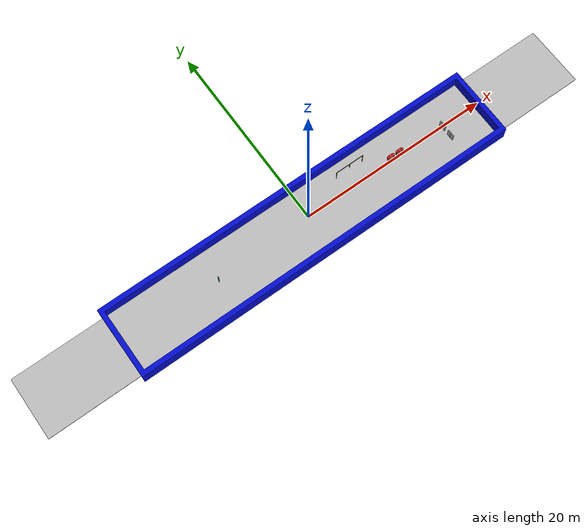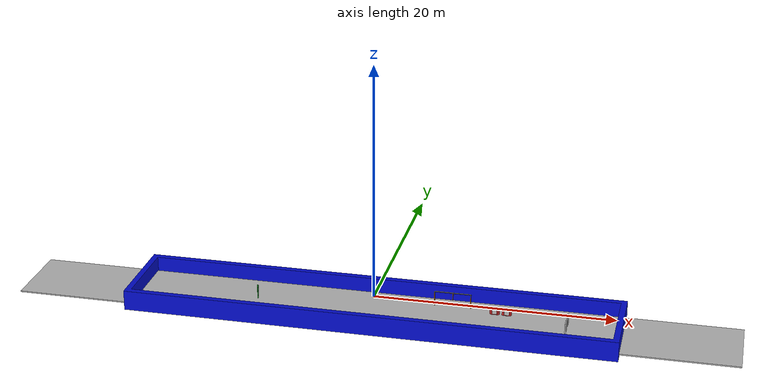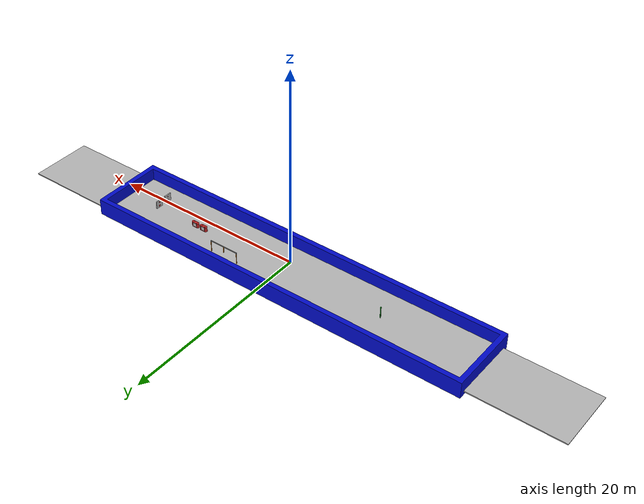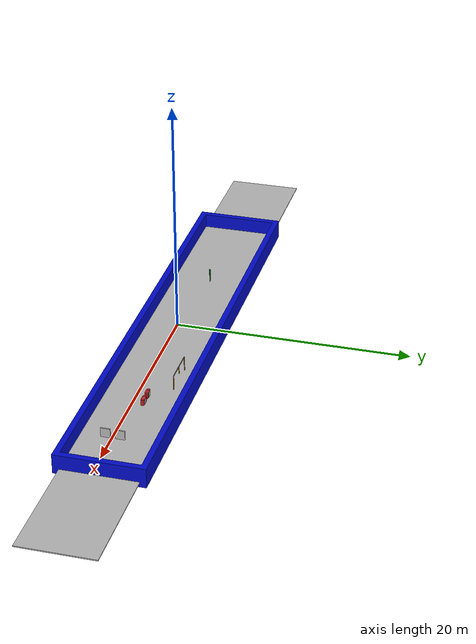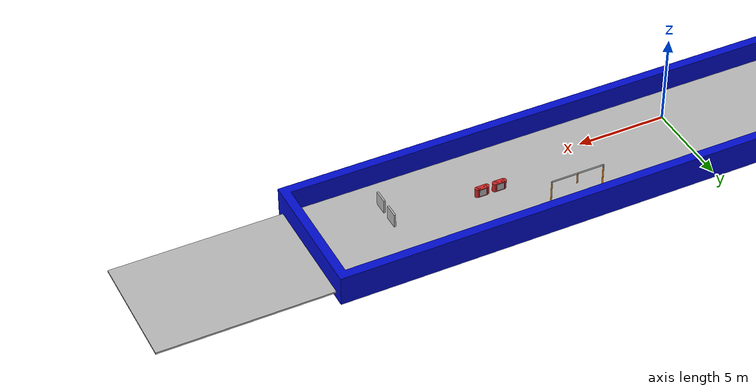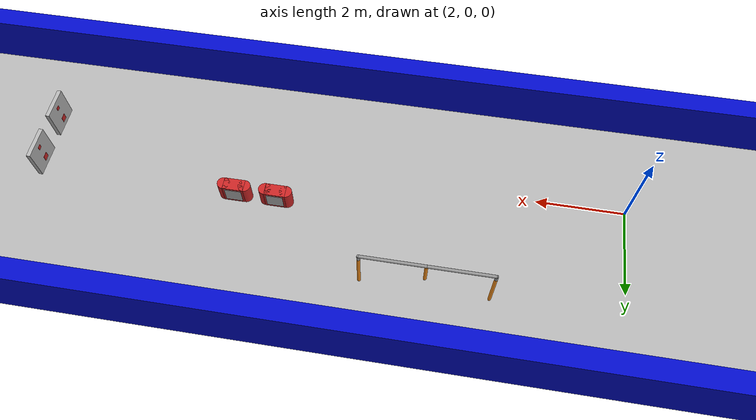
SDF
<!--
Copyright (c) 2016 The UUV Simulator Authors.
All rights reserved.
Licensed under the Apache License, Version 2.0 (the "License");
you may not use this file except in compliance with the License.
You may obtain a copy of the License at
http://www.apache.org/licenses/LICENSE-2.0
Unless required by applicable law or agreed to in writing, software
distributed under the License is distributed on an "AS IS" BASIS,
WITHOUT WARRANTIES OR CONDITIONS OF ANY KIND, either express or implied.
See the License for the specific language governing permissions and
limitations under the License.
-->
<sdf version="1.5">
 <world name="empty_underwater">
  <physics name="default_physics" default="true" type="ode">
   <max_step_size>0.002</max_step_size>
   <real_time_factor>1</real_time_factor>
   <real_time_update_rate>500</real_time_update_rate>
   <ode><solver><type>quick</type><iters>50</iters><sor>0.5</sor></solver></ode>
  </physics>
  <scene>
   <ambient>0.01 0.01 0.01 1.0</ambient>
   <sky><clouds><speed>12</speed></clouds></sky>
   <shadows>1</shadows>
   <fog>
    <color>0.0039 0.26 0.415 1.0</color>
    <type>linear</type>
    <density>0.4</density>
    <start>10</start>
    <end>40</end>
   </fog>
  </scene>
  <spherical_coordinates>
   <latitude_deg>56.71897669633431</latitude_deg>
   <longitude_deg>3.515625</longitude_deg>
  </spherical_coordinates>
  <light type="directional" name="sun1">
   <pose>10 0 10 0 0 0</pose>
   <diffuse>0.25 0.25 0.45 1</diffuse>
   <specular>0.2 0.2 0.2 1</specular>
   <attenuation>
    <range>1000</range>
    <constant>0.9</constant>
    <linear>0.01</linear>
    <quadratic>0.001</quadratic>
   </attenuation>
   <direction>-0.5 0.1 -0.9</direction>
  </light>
  <light type="directional" name="sun2">
   <pose>-10 0 10 0 0 0</pose>
   <diffuse>0.25 0.35 0.45 1</diffuse>
   <specular>0.2 0.2 0.2 1</specular>
   <attenuation>
    <range>1000</range>
    <constant>0.9</constant>
    <linear>0.01</linear>
    <quadratic>0.001</quadratic>
   </attenuation>
   <direction>0.5 0.1 0.9</direction>
  </light>
  <light type="directional" name="sun3">
   <pose>-25 0 5 0 0 0</pose>
   <diffuse>0.25 0.25 0.45 1</diffuse>
   <specular>0.2 0.2 0.2 1</specular>
   <attenuation>
    <range>20</range>
    <constant>0.9</constant>
    <linear>0.01</linear>
    <quadratic>0.001</quadratic>
   </attenuation>
   <direction>0.5 0.1 0.9</direction>
  </light>
  <include><uri>model://pools/cybernetics_pool</uri></include>
  <include><name>gate_side_a</name><pose>7.0 2.0 0.0 0 0 1.57</pose><uri>model://2018/gate</uri></include>
  <include>
   <name>torpedo_targets</name>
   <pose>16.0 -1.8 -0.5 0 0 1.57</pose>
   <uri>model://2018/torpedo_targets</uri>
  </include>
  <include>
   <name>buoy_tommy_gun</name>
   <pose>11.0 0.5 -0.5 0 0 0</pose>
   <uri>model://2018/buoy_tommy_gun</uri>
  </include>
  <include><name>buoy_badge</name><pose>10.0 0.5 -0.5 0 0 0</pose><uri>model://2018/buoy_badge</uri></include>
  <include><name>buoys</name><pose>-10.0 0.0 0.0 0 0 0</pose><uri>model://buoys</uri></include>
  <plugin name="underwater_current_plugin" filename="libuuv_underwater_current_ros_plugin.so">
   <namespace>hydrodynamics</namespace>
   <constant_current>
    <topic>current_velocity</topic>
    <velocity><mean>0</mean><min>0</min><max>5</max><mu>0.0</mu><noiseAmp>0.0</noiseAmp></velocity>
    <horizontal_angle>
     <mean>0</mean>
     <min>-3.141592653589793238</min>
     <max>3.141592653589793238</max>
     <mu>0.0</mu>
     <noiseAmp>0.0</noiseAmp>
    </horizontal_angle>
    <vertical_angle>
     <mean>0</mean>
     <min>-3.141592653589793238</min>
     <max>3.141592653589793238</max>
     <mu>0.0</mu>
     <noiseAmp>0.0</noiseAmp>
    </vertical_angle>
   </constant_current>
  </plugin>
  <plugin name="sc_interface" filename="libuuv_sc_ros_interface_plugin.so"/>
 </world>
</sdf>

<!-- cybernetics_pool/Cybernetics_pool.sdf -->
<sdf version='1.5'>

  <model name='transdec_pool'>
    <pose>0 0 0 0 0 0</pose>
    <self_collide> 0 </self_collide>
    <static> 1</static>

    <link name='pool'>
      <pose>0 0 0 0 0 0</pose>
      <visual name='pool_visual'>
        <geometry>
            <mesh><uri>file://cybernetics_pool/cybernetics_pool.dae</uri></mesh>
        </geometry>
        <material>
          <script>
            <uri>file://media/materials/scripts/sand.material</uri>
            <name>UUVSimulator/SandAndStones</name>
          </script>
          <emissive>
            0.2 0.2 0.2 1.0
          </emissive>
        </material>
      </visual>
      <collision name='pool_collision'>
        <geometry>
            <mesh><uri>file://cybernetics_pool/cybernetics_pool.dae</uri></mesh>
        </geometry>
      </collision>

    <visual name="ground">
        <cast_shadows>false</cast_shadows>
        <pose>0 0 -1.3 0 0 0</pose>
        <geometry>
          <box>
            <size>60 6.45 .1</size>
          </box>
        </geometry>
        <material>
          <script>
            <uri>file://media/materials/scripts/sand.material</uri>
            <name>UUVSimulator/SandAndStones</name>
          </script>
        </material>
      </visual>

    </link>

  </model>
</sdf>

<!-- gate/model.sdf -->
<sdf version='1.6'>
  <model name='gate'>
    <link name='component_rt'>
      <inertial>
        <mass>10</mass>
        <inertia>
          <ixx>0.145833</ixx>
          <ixy>0</ixy>
          <ixz>0</ixz>
          <iyy>0.145833</iyy>
          <iyz>0</iyz>
          <izz>0.125</izz>
        </inertia>
        <pose>0 0 0 0 -0 0</pose>
      </inertial>
      <pose>0 1.52 -0.000146 1.5707 -0 0</pose>
      <self_collide>0</self_collide>
      <enable_wind>0</enable_wind>
      <kinematic>0</kinematic>
      <gravity>0</gravity>
      <visual name='visual'>
        <pose>0 0 0 0 -0 0</pose>
        <geometry>
          <cylinder>
            <radius>0.0381</radius>
            <length>1.52</length>
          </cylinder>
        </geometry>
        <material>
          <lighting>1</lighting>
          <script>
            <uri>file://media/materials/scripts/gazebo.material</uri>
            <name>Gazebo/Grey</name>
          </script>
          <shader type='pixel'/>
          <emissive>0 0 0 1</emissive>
        </material>
        <transparency>0</transparency>
        <cast_shadows>1</cast_shadows>
      </visual>
      <collision name='collision'>
        <laser_retro>0</laser_retro>
        <max_contacts>10</max_contacts>
        <pose>0 0 0 0 -0 0</pose>
        <geometry>
          <cylinder>
            <radius>0.0381</radius>
            <length>1.52</length>
          </cylinder>
        </geometry>
        <surface>
          <friction>
            <ode>
              <mu>1</mu>
              <mu2>1</mu2>
              <fdir1>0 0 0</fdir1>
              <slip1>0</slip1>
              <slip2>0</slip2>
            </ode>
            <torsional>
              <coefficient>1</coefficient>
              <patch_radius>0</patch_radius>
              <surface_radius>0</surface_radius>
              <use_patch_radius>1</use_patch_radius>
              <ode>
                <slip>0</slip>
              </ode>
            </torsional>
          </friction>
          <bounce>
            <restitution_coefficient>0</restitution_coefficient>
            <threshold>1e+06</threshold>
          </bounce>
          <contact>
            <collide_without_contact>0</collide_without_contact>
            <collide_without_contact_bitmask>1</collide_without_contact_bitmask>
            <collide_bitmask>1</collide_bitmask>
            <ode>
              <soft_cfm>0</soft_cfm>
              <soft_erp>0.2</soft_erp>
              <kp>1e+13</kp>
              <kd>1</kd>
              <max_vel>0.01</max_vel>
              <min_depth>0</min_depth>
            </ode>
            <bullet>
              <split_impulse>1</split_impulse>
              <split_impulse_penetration_threshold>-0.01</split_impulse_penetration_threshold>
              <soft_cfm>0</soft_cfm>
              <soft_erp>0.2</soft_erp>
              <kp>1e+13</kp>
              <kd>1</kd>
            </bullet>
          </contact>
        </surface>
      </collision>
    </link>
    <link name='component_lb'>
      <inertial>
        <mass>10</mass>
        <inertia>
          <ixx>0.145833</ixx>
          <ixy>0</ixy>
          <ixz>0</ixz>
          <iyy>0.145833</iyy>
          <iyz>0</iyz>
          <izz>0.125</izz>
        </inertia>
        <pose>0 0 0 0 -0 0</pose>
      </inertial>
      <pose>-0 -0.760073 -0.759927 0 -0 0</pose>
      <self_collide>0</self_collide>
      <enable_wind>0</enable_wind>
      <kinematic>0</kinematic>
      <gravity>0</gravity>
      <visual name='visual'>
        <pose>0 0 0 0 -0 0</pose>
        <geometry>
          <cylinder>
            <radius>0.0381</radius>
            <length>1.52</length>
          </cylinder>
        </geometry>
        <material>
          <lighting>1</lighting>
          <script>
            <uri>file://media/materials/scripts/gazebo.material</uri>
            <name>Gazebo/Grey</name>
          </script>
          <shader type='pixel'/>
          <emissive>0 0 0 1</emissive>
        </material>
        <transparency>0</transparency>
        <cast_shadows>1</cast_shadows>
      </visual>
      <collision name='collision'>
        <laser_retro>0</laser_retro>
        <max_contacts>10</max_contacts>
        <pose>0 0 0 0 -0 0</pose>
        <geometry>
          <cylinder>
            <radius>0.0381</radius>
            <length>1.52</length>
          </cylinder>
        </geometry>
        <surface>
          <friction>
            <ode>
              <mu>1</mu>
              <mu2>1</mu2>
              <fdir1>0 0 0</fdir1>
              <slip1>0</slip1>
              <slip2>0</slip2>
            </ode>
            <torsional>
              <coefficient>1</coefficient>
              <patch_radius>0</patch_radius>
              <surface_radius>0</surface_radius>
              <use_patch_radius>1</use_patch_radius>
              <ode>
                <slip>0</slip>
              </ode>
            </torsional>
          </friction>
          <bounce>
            <restitution_coefficient>0</restitution_coefficient>
            <threshold>1e+06</threshold>
          </bounce>
          <contact>
            <collide_without_contact>0</collide_without_contact>
            <collide_without_contact_bitmask>1</collide_without_contact_bitmask>
            <collide_bitmask>1</collide_bitmask>
            <ode>
              <soft_cfm>0</soft_cfm>
              <soft_erp>0.2</soft_erp>
              <kp>1e+13</kp>
              <kd>1</kd>
              <max_vel>0.01</max_vel>
              <min_depth>0</min_depth>
            </ode>
            <bullet>
              <split_impulse>1</split_impulse>
              <split_impulse_penetration_threshold>-0.01</split_impulse_penetration_threshold>
              <soft_cfm>0</soft_cfm>
              <soft_erp>0.2</soft_erp>
              <kp>1e+13</kp>
              <kd>1</kd>
            </bullet>
          </contact>
        </surface>
      </collision>
    </link>
    <link name='component_lt'>
      <inertial>
        <mass>10</mass>
        <inertia>
          <ixx>0.145833</ixx>
          <ixy>0</ixy>
          <ixz>0</ixz>
          <iyy>0.145833</iyy>
          <iyz>0</iyz>
          <izz>0.125</izz>
        </inertia>
        <pose>0 0 0 0 -0 0</pose>
      </inertial>
      <pose>0 0 0 1.5707 -0 0</pose>
      <self_collide>0</self_collide>
      <enable_wind>0</enable_wind>
      <kinematic>0</kinematic>
      <gravity>0</gravity>
      <visual name='visual'>
        <pose>0 0 0 0 -0 0</pose>
        <geometry>
          <cylinder>
            <radius>0.0381</radius>
            <length>1.52</length>
          </cylinder>
        </geometry>
        <material>
          <lighting>1</lighting>
          <script>
            <uri>file://media/materials/scripts/gazebo.material</uri>
            <name>Gazebo/Grey</name>
          </script>
          <shader type='pixel'/>
          <emissive>0 0 0 1</emissive>
        </material>
        <transparency>0</transparency>
        <cast_shadows>1</cast_shadows>
      </visual>
      <collision name='collision'>
        <laser_retro>0</laser_retro>
        <max_contacts>10</max_contacts>
        <pose>0 0 0 0 -0 0</pose>
        <geometry>
          <cylinder>
            <radius>0.0381</radius>
            <length>1.52</length>
          </cylinder>
        </geometry>
        <surface>
          <friction>
            <ode>
              <mu>1</mu>
              <mu2>1</mu2>
              <fdir1>0 0 0</fdir1>
              <slip1>0</slip1>
              <slip2>0</slip2>
            </ode>
            <torsional>
              <coefficient>1</coefficient>
              <patch_radius>0</patch_radius>
              <surface_radius>0</surface_radius>
              <use_patch_radius>1</use_patch_radius>
              <ode>
                <slip>0</slip>
              </ode>
            </torsional>
          </friction>
          <bounce>
            <restitution_coefficient>0</restitution_coefficient>
            <threshold>1e+06</threshold>
          </bounce>
          <contact>
            <collide_without_contact>0</collide_without_contact>
            <collide_without_contact_bitmask>1</collide_without_contact_bitmask>
            <collide_bitmask>1</collide_bitmask>
            <ode>
              <soft_cfm>0</soft_cfm>
              <soft_erp>0.2</soft_erp>
              <kp>1e+13</kp>
              <kd>1</kd>
              <max_vel>0.01</max_vel>
              <min_depth>0</min_depth>
            </ode>
            <bullet>
              <split_impulse>1</split_impulse>
              <split_impulse_penetration_threshold>-0.01</split_impulse_penetration_threshold>
              <soft_cfm>0</soft_cfm>
              <soft_erp>0.2</soft_erp>
              <kp>1e+13</kp>
              <kd>1</kd>
            </bullet>
          </contact>
        </surface>
      </collision>
    </link>
    <link name='component_rb'>
      <inertial>
        <mass>10</mass>
        <inertia>
          <ixx>0.145833</ixx>
          <ixy>0</ixy>
          <ixz>0</ixz>
          <iyy>0.145833</iyy>
          <iyz>0</iyz>
          <izz>0.125</izz>
        </inertia>
        <pose>0 0 0 0 -0 0</pose>
      </inertial>
      <pose>0 2.27993 -0.76022 0 -0 0</pose>
      <self_collide>0</self_collide>
      <enable_wind>0</enable_wind>
      <kinematic>0</kinematic>
      <gravity>0</gravity>
      <visual name='visual'>
        <pose>0 0 0 0 -0 0</pose>
        <geometry>
          <cylinder>
            <radius>0.0381</radius>
            <length>1.52</length>
          </cylinder>
        </geometry>
        <material>
          <lighting>1</lighting>
          <script>
            <uri>file://media/materials/scripts/gazebo.material</uri>
            <name>Gazebo/Grey</name>
          </script>
          <shader type='pixel'/>
          <emissive>0 0 0 1</emissive>
        </material>
        <transparency>0</transparency>
        <cast_shadows>1</cast_shadows>
      </visual>
      <collision name='collision'>
        <laser_retro>0</laser_retro>
        <max_contacts>10</max_contacts>
        <pose>0 0 0 0 -0 0</pose>
        <geometry>
          <cylinder>
            <radius>0.0381</radius>
            <length>1.52</length>
          </cylinder>
        </geometry>
        <surface>
          <friction>
            <ode>
              <mu>1</mu>
              <mu2>1</mu2>
              <fdir1>0 0 0</fdir1>
              <slip1>0</slip1>
              <slip2>0</slip2>
            </ode>
            <torsional>
              <coefficient>1</coefficient>
              <patch_radius>0</patch_radius>
              <surface_radius>0</surface_radius>
              <use_patch_radius>1</use_patch_radius>
              <ode>
                <slip>0</slip>
              </ode>
            </torsional>
          </friction>
          <bounce>
            <restitution_coefficient>0</restitution_coefficient>
            <threshold>1e+06</threshold>
          </bounce>
          <contact>
            <collide_without_contact>0</collide_without_contact>
            <collide_without_contact_bitmask>1</collide_without_contact_bitmask>
            <collide_bitmask>1</collide_bitmask>
            <ode>
              <soft_cfm>0</soft_cfm>
              <soft_erp>0.2</soft_erp>
              <kp>1e+13</kp>
              <kd>1</kd>
              <max_vel>0.01</max_vel>
              <min_depth>0</min_depth>
            </ode>
            <bullet>
              <split_impulse>1</split_impulse>
              <split_impulse_penetration_threshold>-0.01</split_impulse_penetration_threshold>
              <soft_cfm>0</soft_cfm>
              <soft_erp>0.2</soft_erp>
              <kp>1e+13</kp>
              <kd>1</kd>
            </bullet>
          </contact>
        </surface>
      </collision>
    </link>
    <link name='corner_l'>
      <inertial>
        <mass>1</mass>
        <inertia>
          <ixx>0.1</ixx>
          <ixy>0</ixy>
          <ixz>0</ixz>
          <iyy>0.1</iyy>
          <iyz>0</iyz>
          <izz>0.1</izz>
        </inertia>
        <pose>0 0 0 0 -0 0</pose>
      </inertial>
      <pose>-0 2.28 -0.000219 1.5707 -0 0</pose>
      <gravity>0</gravity>
      <self_collide>0</self_collide>
      <kinematic>0</kinematic>
      <enable_wind>0</enable_wind>
      <visual name='visual'>
        <pose>0 0 0 0 -0 0</pose>
        <geometry>
          <sphere>
            <radius>0.038</radius>
          </sphere>
        </geometry>
        <material>
          <lighting>1</lighting>
          <script>
            <uri>file://media/materials/scripts/gazebo.material</uri>
            <name>Gazebo/Grey</name>
          </script>
          <shader type='pixel'/>
          <emissive>0 0 0 1</emissive>
        </material>
        <transparency>0</transparency>
        <cast_shadows>1</cast_shadows>
      </visual>
      <collision name='collision'>
        <laser_retro>0</laser_retro>
        <max_contacts>10</max_contacts>
        <pose>0 0 0 0 -0 0</pose>
        <geometry>
          <sphere>
            <radius>0.0381</radius>
          </sphere>
        </geometry>
        <surface>
          <friction>
            <ode>
              <mu>1</mu>
              <mu2>1</mu2>
              <fdir1>0 0 0</fdir1>
              <slip1>0</slip1>
              <slip2>0</slip2>
            </ode>
            <torsional>
              <coefficient>1</coefficient>
              <patch_radius>0</patch_radius>
              <surface_radius>0</surface_radius>
              <use_patch_radius>1</use_patch_radius>
              <ode>
                <slip>0</slip>
              </ode>
            </torsional>
          </friction>
          <bounce>
            <restitution_coefficient>0</restitution_coefficient>
            <threshold>1e+06</threshold>
          </bounce>
          <contact>
            <collide_without_contact>0</collide_without_contact>
            <collide_without_contact_bitmask>1</collide_without_contact_bitmask>
            <collide_bitmask>1</collide_bitmask>
            <ode>
              <soft_cfm>0</soft_cfm>
              <soft_erp>0.2</soft_erp>
              <kp>1e+13</kp>
              <kd>1</kd>
              <max_vel>0.01</max_vel>
              <min_depth>0</min_depth>
            </ode>
            <bullet>
              <split_impulse>1</split_impulse>
              <split_impulse_penetration_threshold>-0.01</split_impulse_penetration_threshold>
              <soft_cfm>0</soft_cfm>
              <soft_erp>0.2</soft_erp>
              <kp>1e+13</kp>
              <kd>1</kd>
            </bullet>
          </contact>
        </surface>
      </collision>
    </link>
    <link name='corner_r'>
      <inertial>
        <mass>1</mass>
        <inertia>
          <ixx>0.1</ixx>
          <ixy>0</ixy>
          <ixz>0</ixz>
          <iyy>0.1</iyy>
          <iyz>0</iyz>
          <izz>0.1</izz>
        </inertia>
        <pose>0 0 0 0 -0 0</pose>
      </inertial>
      <pose>0 -0.76 -0 0 -0 0</pose>
      <gravity>0</gravity>
      <self_collide>0</self_collide>
      <kinematic>0</kinematic>
      <enable_wind>0</enable_wind>
      <visual name='visual'>
        <pose>0 0 0 0 -0 0</pose>
        <geometry>
          <sphere>
            <radius>0.038</radius>
          </sphere>
        </geometry>
        <material>
          <lighting>1</lighting>
          <script>
            <uri>file://media/materials/scripts/gazebo.material</uri>
            <name>Gazebo/Grey</name>
          </script>
          <shader type='pixel'/>
          <emissive>0 0 0 1</emissive>
        </material>
        <transparency>0</transparency>
        <cast_shadows>1</cast_shadows>
      </visual>
      <collision name='collision'>
        <laser_retro>0</laser_retro>
        <max_contacts>10</max_contacts>
        <pose>0 0 0 0 -0 0</pose>
        <geometry>
          <sphere>
            <radius>0.0381</radius>
          </sphere>
        </geometry>
        <surface>
          <friction>
            <ode>
              <mu>1</mu>
              <mu2>1</mu2>
              <fdir1>0 0 0</fdir1>
              <slip1>0</slip1>
              <slip2>0</slip2>
            </ode>
            <torsional>
              <coefficient>1</coefficient>
              <patch_radius>0</patch_radius>
              <surface_radius>0</surface_radius>
              <use_patch_radius>1</use_patch_radius>
              <ode>
                <slip>0</slip>
              </ode>
            </torsional>
          </friction>
          <bounce>
            <restitution_coefficient>0</restitution_coefficient>
            <threshold>1e+06</threshold>
          </bounce>
          <contact>
            <collide_without_contact>0</collide_without_contact>
            <collide_without_contact_bitmask>1</collide_without_contact_bitmask>
            <collide_bitmask>1</collide_bitmask>
            <ode>
              <soft_cfm>0</soft_cfm>
              <soft_erp>0.2</soft_erp>
              <kp>1e+13</kp>
              <kd>1</kd>
              <max_vel>0.01</max_vel>
              <min_depth>0</min_depth>
            </ode>
            <bullet>
              <split_impulse>1</split_impulse>
              <split_impulse_penetration_threshold>-0.01</split_impulse_penetration_threshold>
              <soft_cfm>0</soft_cfm>
              <soft_erp>0.2</soft_erp>
              <kp>1e+13</kp>
              <kd>1</kd>
            </bullet>
          </contact>
        </surface>
      </collision>
    </link>
    <link name='jacket_l'>
      <inertial>
        <mass>10</mass>
        <inertia>
          <ixx>0.145833</ixx>
          <ixy>0</ixy>
          <ixz>0</ixz>
          <iyy>0.145833</iyy>
          <iyz>0</iyz>
          <izz>0.125</izz>
        </inertia>
        <pose>0 0 0 0 -0 0</pose>
      </inertial>
      <pose>-0 -0.760073 -0.759927 0 -0 0</pose>
      <self_collide>0</self_collide>
      <enable_wind>0</enable_wind>
      <kinematic>0</kinematic>
      <gravity>0</gravity>
      <visual name='visual'>
        <pose>0 0 0 0 -0 0</pose>
        <geometry>
          <cylinder>
            <radius>0.039</radius>
            <length>1.219</length>
          </cylinder>
        </geometry>
        <material>
          <lighting>1</lighting>
          <script>
            <uri>file://media/materials/scripts/gazebo.material</uri>
            <name>Gazebo/Orange</name>
          </script>
          <shader type='pixel'/>
          <emissive>0 0 0 1</emissive>
        </material>
        <transparency>0</transparency>
        <cast_shadows>1</cast_shadows>
      </visual>
      <collision name='collision'>
        <laser_retro>0</laser_retro>
        <max_contacts>10</max_contacts>
        <pose>0 0 0 0 -0 0</pose>
        <geometry>
          <cylinder>
            <radius>0</radius>
            <length>0</length>
          </cylinder>
        </geometry>
        <surface>
          <friction>
            <ode>
              <mu>1</mu>
              <mu2>1</mu2>
              <fdir1>0 0 0</fdir1>
              <slip1>0</slip1>
              <slip2>0</slip2>
            </ode>
            <torsional>
              <coefficient>1</coefficient>
              <patch_radius>0</patch_radius>
              <surface_radius>0</surface_radius>
              <use_patch_radius>1</use_patch_radius>
              <ode>
                <slip>0</slip>
              </ode>
            </torsional>
          </friction>
          <bounce>
            <restitution_coefficient>0</restitution_coefficient>
            <threshold>1e+06</threshold>
          </bounce>
          <contact>
            <collide_without_contact>0</collide_without_contact>
            <collide_without_contact_bitmask>1</collide_without_contact_bitmask>
            <collide_bitmask>1</collide_bitmask>
            <ode>
              <soft_cfm>0</soft_cfm>
              <soft_erp>0.2</soft_erp>
              <kp>1e+13</kp>
              <kd>1</kd>
              <max_vel>0.01</max_vel>
              <min_depth>0</min_depth>
            </ode>
            <bullet>
              <split_impulse>1</split_impulse>
              <split_impulse_penetration_threshold>-0.01</split_impulse_penetration_threshold>
              <soft_cfm>0</soft_cfm>
              <soft_erp>0.2</soft_erp>
              <kp>1e+13</kp>
              <kd>1</kd>
            </bullet>
          </contact>
        </surface>
      </collision>
    </link>
    <link name='jacket_r'>
      <inertial>
        <mass>1</mass>
        <inertia>
          <ixx>0.145833</ixx>
          <ixy>0</ixy>
          <ixz>0</ixz>
          <iyy>0.145833</iyy>
          <iyz>0</iyz>
          <izz>0.125</izz>
        </inertia>
        <pose>0 0 0 0 -0 0</pose>
      </inertial>
      <pose>0 2.27993 -0.76022 0 -0 0</pose>
      <self_collide>0</self_collide>
      <enable_wind>0</enable_wind>
      <kinematic>0</kinematic>
      <gravity>0</gravity>
      <visual name='visual'>
        <pose>0 0 0 0 -0 0</pose>
        <geometry>
          <cylinder>
            <radius>0.039</radius>
            <length>1.219</length>
          </cylinder>
        </geometry>
        <material>
          <lighting>1</lighting>
          <script>
            <uri>file://media/materials/scripts/gazebo.material</uri>
            <name>Gazebo/Orange</name>
          </script>
          <shader type='pixel'/>
          <emissive>0 0 0 1</emissive>
        </material>
        <transparency>0</transparency>
        <cast_shadows>1</cast_shadows>
      </visual>
      <collision name='collision'>
        <laser_retro>0</laser_retro>
        <max_contacts>10</max_contacts>
        <pose>0 0 0 0 -0 0</pose>
        <geometry>
          <cylinder>
            <radius>0</radius>
            <length>0</length>
          </cylinder>
        </geometry>
        <surface>
          <friction>
            <ode>
              <mu>1</mu>
              <mu2>1</mu2>
              <fdir1>0 0 0</fdir1>
              <slip1>0</slip1>
              <slip2>0</slip2>
            </ode>
            <torsional>
              <coefficient>1</coefficient>
              <patch_radius>0</patch_radius>
              <surface_radius>0</surface_radius>
              <use_patch_radius>1</use_patch_radius>
              <ode>
                <slip>0</slip>
              </ode>
            </torsional>
          </friction>
          <bounce>
            <restitution_coefficient>0</restitution_coefficient>
            <threshold>1e+06</threshold>
          </bounce>
          <contact>
            <collide_without_contact>0</collide_without_contact>
            <collide_without_contact_bitmask>1</collide_without_contact_bitmask>
            <collide_bitmask>1</collide_bitmask>
            <ode>
              <soft_cfm>0</soft_cfm>
              <soft_erp>0.2</soft_erp>
              <kp>1e+13</kp>
              <kd>1</kd>
              <max_vel>0.01</max_vel>
              <min_depth>0</min_depth>
            </ode>
            <bullet>
              <split_impulse>1</split_impulse>
              <split_impulse_penetration_threshold>-0.01</split_impulse_penetration_threshold>
              <soft_cfm>0</soft_cfm>
              <soft_erp>0.2</soft_erp>
              <kp>1e+13</kp>
              <kd>1</kd>
            </bullet>
          </contact>
        </surface>
      </collision>
    </link>
    <link name='center_link'>
      <inertial>
        <mass>1</mass>
        <inertia>
          <ixx>0.145833</ixx>
          <ixy>0</ixy>
          <ixz>0</ixz>
          <iyy>0.145833</iyy>
          <iyz>0</iyz>
          <izz>0.125</izz>
        </inertia>
        <pose>0 0 0 0 -0 0</pose>
      </inertial>
      <pose>-0 0.75 -0.340029 3.1414 -0 0</pose>
      <gravity>0</gravity>
      <self_collide>0</self_collide>
      <kinematic>0</kinematic>
      <enable_wind>0</enable_wind>
      <visual name='visual'>
        <pose>0 0 0 0 -0 0</pose>
        <geometry>
          <cylinder>
            <radius>0.03</radius>
            <length>0.6096</length>
          </cylinder>
        </geometry>
        <material>
        <material>
          <lighting>1</lighting>
          <script>
            <uri>file://media/materials/scripts/gazebo.material</uri>
            <name>Gazebo/Orange</name>
          </script>
          <shader type='pixel'/>
          <emissive>0 0 0 1</emissive>
        </material>
        </material>
        <transparency>0</transparency>
        <cast_shadows>1</cast_shadows>
      </visual>
      <collision name='collision'>
        <laser_retro>0</laser_retro>
        <max_contacts>10</max_contacts>
        <pose>0 0 0 0 -0 0</pose>
        <geometry>
          <cylinder>
            <radius>0.03</radius>
            <length>0.6096</length>
          </cylinder>
        </geometry>
        <surface>
          <friction>
            <ode>
              <mu>1</mu>
              <mu2>1</mu2>
              <fdir1>0 0 0</fdir1>
              <slip1>0</slip1>
              <slip2>0</slip2>
            </ode>
            <torsional>
              <coefficient>1</coefficient>
              <patch_radius>0</patch_radius>
              <surface_radius>0</surface_radius>
              <use_patch_radius>1</use_patch_radius>
              <ode>
                <slip>0</slip>
              </ode>
            </torsional>
          </friction>
          <bounce>
            <restitution_coefficient>0</restitution_coefficient>
            <threshold>1e+06</threshold>
          </bounce>
          <contact>
            <collide_without_contact>0</collide_without_contact>
            <collide_without_contact_bitmask>1</collide_without_contact_bitmask>
            <collide_bitmask>1</collide_bitmask>
            <ode>
              <soft_cfm>0</soft_cfm>
              <soft_erp>0.2</soft_erp>
              <kp>1e+13</kp>
              <kd>1</kd>
              <max_vel>0.01</max_vel>
              <min_depth>0</min_depth>
            </ode>
            <bullet>
              <split_impulse>1</split_impulse>
              <split_impulse_penetration_threshold>-0.01</split_impulse_penetration_threshold>
              <soft_cfm>0</soft_cfm>
              <soft_erp>0.2</soft_erp>
              <kp>1e+13</kp>
              <kd>1</kd>
            </bullet>
          </contact>
        </surface>
      </collision>
    </link>
    <link name='jacket_c'>
      <inertial>
        <mass>10</mass>
        <inertia>
          <ixx>0.145833</ixx>
          <ixy>0</ixy>
          <ixz>0</ixz>
          <iyy>0.145833</iyy>
          <iyz>0</iyz>
          <izz>0.125</izz>
        </inertia>
        <pose>0 0 0 0 -0 0</pose>
      </inertial>
      <pose>-0 0.75 -0.340029 3.1414 -0 0</pose>
      <self_collide>0</self_collide>
      <enable_wind>0</enable_wind>
      <kinematic>0</kinematic>
      <gravity>0</gravity>
      <visual name='visual'>
        <pose>0 0 0 0 -0 0</pose>
        <geometry>
          <cylinder>
            <radius>0.039</radius>
            <length>0.6096</length>
          </cylinder>
        </geometry>
        <material>
          <lighting>1</lighting>
          <script>
            <uri>file://media/materials/scripts/gazebo.material</uri>
            <name>Gazebo/Orange</name>
          </script>
          <shader type='pixel'/>
          <emissive>0 0 0 1</emissive>
        </material>
        <transparency>0</transparency>
        <cast_shadows>1</cast_shadows>
      </visual>
      <collision name='collision'>
        <laser_retro>0</laser_retro>
        <max_contacts>10</max_contacts>
        <pose>0 0 0 0 -0 0</pose>
        <geometry>
          <cylinder>
            <radius>0</radius>
            <length>0</length>
          </cylinder>
        </geometry>
        <surface>
          <friction>
            <ode>
              <mu>1</mu>
              <mu2>1</mu2>
              <fdir1>0 0 0</fdir1>
              <slip1>0</slip1>
              <slip2>0</slip2>
            </ode>
            <torsional>
              <coefficient>1</coefficient>
              <patch_radius>0</patch_radius>
              <surface_radius>0</surface_radius>
              <use_patch_radius>1</use_patch_radius>
              <ode>
                <slip>0</slip>
              </ode>
            </torsional>
          </friction>
          <bounce>
            <restitution_coefficient>0</restitution_coefficient>
            <threshold>1e+06</threshold>
          </bounce>
          <contact>
            <collide_without_contact>0</collide_without_contact>
            <collide_without_contact_bitmask>1</collide_without_contact_bitmask>
            <collide_bitmask>1</collide_bitmask>
            <ode>
              <soft_cfm>0</soft_cfm>
              <soft_erp>0.2</soft_erp>
              <kp>1e+13</kp>
              <kd>1</kd>
              <max_vel>0.01</max_vel>
              <min_depth>0</min_depth>
            </ode>
            <bullet>
              <split_impulse>1</split_impulse>
              <split_impulse_penetration_threshold>-0.01</split_impulse_penetration_threshold>
              <soft_cfm>0</soft_cfm>
              <soft_erp>0.2</soft_erp>
              <kp>1e+13</kp>
              <kd>1</kd>
            </bullet>
          </contact>
        </surface>
      </collision>
    </link>
    <joint name='center_joint' type='fixed'>
      <parent>component_lt</parent>
      <child>center_link</child>
      <pose>0 0 0 0 -0 0</pose>
      <physics>
        <ode>
          <limit>
            <cfm>0</cfm>
            <erp>0.2</erp>
          </limit>
          <suspension>
            <cfm>0</cfm>
            <erp>0.2</erp>
          </suspension>
        </ode>
      </physics>
    </joint>
    <joint name='component_lt_lb' type='fixed'>
      <parent>component_lt</parent>
      <child>component_lb</child>
      <pose>0 0 0 0 -0 0</pose>
      <physics>
        <ode>
          <limit>
            <cfm>0</cfm>
            <erp>0.2</erp>
          </limit>
          <suspension>
            <cfm>0</cfm>
            <erp>0.2</erp>
          </suspension>
        </ode>
      </physics>
    </joint>
    <joint name='component_lt_rt' type='fixed'>
      <parent>component_lt</parent>
      <child>component_rt</child>
      <pose>0 0 0 0 -0 0</pose>
      <physics>
        <ode>
          <limit>
            <cfm>0</cfm>
            <erp>0.2</erp>
          </limit>
          <suspension>
            <cfm>0</cfm>
            <erp>0.2</erp>
          </suspension>
        </ode>
      </physics>
    </joint>
    <joint name='component_rt_rb' type='fixed'>
      <parent>component_rt</parent>
      <child>component_rb</child>
      <pose>0 0 0 0 -0 0</pose>
      <physics>
        <ode>
          <limit>
            <cfm>0</cfm>
            <erp>0.2</erp>
          </limit>
          <suspension>
            <cfm>0</cfm>
            <erp>0.2</erp>
          </suspension>
        </ode>
      </physics>
    </joint>
    <joint name='corner_joint_l' type='fixed'>
      <parent>component_lt</parent>
      <child>corner_l</child>
      <pose>0 0 0 0 -0 0</pose>
      <physics>
        <ode>
          <limit>
            <cfm>0</cfm>
            <erp>0.2</erp>
          </limit>
          <suspension>
            <cfm>0</cfm>
            <erp>0.2</erp>
          </suspension>
        </ode>
      </physics>
    </joint>
    <joint name='corner_joint_r' type='fixed'>
      <parent>component_rt</parent>
      <child>corner_r</child>
      <pose>0 0 0 0 -0 0</pose>
      <physics>
        <ode>
          <limit>
            <cfm>0</cfm>
            <erp>0.2</erp>
          </limit>
          <suspension>
            <cfm>0</cfm>
            <erp>0.2</erp>
          </suspension>
        </ode>
      </physics>
    </joint>
    <joint name='jacket_joint_l' type='fixed'>
      <parent>component_lb</parent>
      <child>jacket_l</child>
      <pose>0 0 0 0 -0 0</pose>
      <physics>
        <ode>
          <limit>
            <cfm>0</cfm>
            <erp>0.2</erp>
          </limit>
          <suspension>
            <cfm>0</cfm>
            <erp>0.2</erp>
          </suspension>
        </ode>
      </physics>
    </joint>
    <joint name='jacket_joint_r' type='fixed'>
      <parent>component_rb</parent>
      <child>jacket_r</child>
      <pose>0 0 0 0 -0 0</pose>
      <physics>
        <ode>
          <limit>
            <cfm>0</cfm>
            <erp>0.2</erp>
          </limit>
          <suspension>
            <cfm>0</cfm>
            <erp>0.2</erp>
          </suspension>
        </ode>
      </physics>
    </joint>
    <static>1</static>
    <allow_auto_disable>1</allow_auto_disable>
  </model>
</sdf>

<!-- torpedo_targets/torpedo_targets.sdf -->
<sdf version='1.5'>

  <model name='torpedo_targets'>
    <pose>0 0 0 0 0 0</pose>
    <self_collide> 0 </self_collide>
    <static> 1</static>

    <link name='target_gman'>
      <pose>0.8 0 0 0 0 0</pose>
      <visual name='target_gman'>
        <geometry>
          <box><size>0.8 0.1 0.8</size></box>
        </geometry>
        <material>
            <script>
            <uri>model://2018/torpedo_targets/materials/scripts</uri>
            <uri>model://2018/torpedo_targets/materials/textures</uri>
            <name>TexturedShape/gman</name>
          </script>
        </material>
      </visual>
      <collision name='target_gman_collide'>
        <geometry>
          <box><size>0.8 0.1 0.8</size></box>
        </geometry>
      </collision>
    </link>
    <link name='gman_headshot'>
      <pose>0.8 0.05 0.2 0 0 0</pose>
      <visual name='gman_headshot'>
        <geometry>
          <box><size>0.1 0.01 0.1</size></box>
        </geometry>
        <material>
            <script>
            <uri>file://media/materials/scripts/gazebo.material</uri>
            <name>Gazebo/Red</name>
          </script>
        </material>
      </visual>
    </link>

    <link name='gman_bodyshot'>
      <pose>0.8 0.05 -0.2 0 0 0</pose>
      <visual name='gman_bodyshot'>
        <geometry>
          <box><size>0.15 0.01 0.15</size></box>
        </geometry>
        <material>
            <script>
            <uri>file://media/materials/scripts/gazebo.material</uri>
            <name>Gazebo/Red</name>
          </script>
        </material>
      </visual>
    </link>

    <link name='target_bootlegger'>
      <pose>2 0 0 0 0 0</pose>
      <visual name='target_bootlegger'>
        <geometry>
          <box><size>0.8 0.1 0.8</size></box>
        </geometry>
        <material>
            <script>
            <uri>model://2018/torpedo_targets/materials/scripts</uri>
            <uri>model://2018/torpedo_targets/materials/textures</uri>
            <name>TexturedShape/bootlegger</name>
          </script>
        </material>
      </visual>
      <collision name='target_bootlegger_collide'>
        <geometry>
          <box><size>0.8 0.1 0.8</size></box>
        </geometry>
      </collision>
    </link>

    <link name='bootlegger_headshot'>
      <pose>2 0.05 0.2 0 0 0</pose>
      <visual name='bootlegger_headshot'>
        <geometry>
          <box><size>0.1 0.01 0.1</size></box>
        </geometry>
        <material>
            <script>
            <uri>file://media/materials/scripts/gazebo.material</uri>
            <name>Gazebo/Red</name>
          </script>
        </material>
      </visual>
    </link>

    <link name='bootlegger_bodyshot'>
      <pose>2 0.05 -0.2 0 0 0</pose>
      <visual name='bootlegger_bodyshot'>
        <geometry>
          <box><size>0.15 0.01 0.15</size></box>
        </geometry>
        <material>
            <script>
            <uri>file://media/materials/scripts/gazebo.material</uri>
            <name>Gazebo/Red</name>
          </script>
        </material>
      </visual>
    </link>

  </model>
</sdf>

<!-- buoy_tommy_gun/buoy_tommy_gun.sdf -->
<sdf version='1.5'>
<!--
     Written by Kristoffer Rakstad Solberg, Student
     Copyright (c) 2019 Manta AUV, Vortex NTNU.
     All rights reserved.
-->
  <model name='buoy_tommy_gate'>
    <pose> 0 0 0 0 0 0</pose>
    <self_collide> 0 </self_collide>
    <static>1</static>

    <link name='buoy_base'>
      <pose> 0 0 0 0 0 0</pose>
      <visual name='gate_mid_vis'>
        <geometry>
          <box>
            <size>0.5 0.3 0.5</size>
          </box>
        </geometry>
        <material>
          <script>
            <uri>file://media/materials/scripts/gazebo.material</uri>
            <name>Gazebo/Red</name>
          </script>
        </material>
      </visual>
      <collision name='buoy_collide'>
        <geometry>
          <box>
            <size>0.5 0.3 0.5</size>
          </box>
        </geometry>
      </collision>
    </link>

    <link name='buoy_side_left'>
      <pose> -0.25 0 0 0 0 0</pose>
      <visual name='gate_side_left_vis'>
        <geometry>
          <cylinder>
            <radius>0.15</radius>
            <length>0.5</length>
          </cylinder>
        </geometry>
        <material>
          <script>
            <uri>file://media/materials/scripts/gazebo.material</uri>
            <name>Gazebo/Red</name>
          </script>
        </material>
      </visual>
      <collision name='buoy_collide_side_left'>
        <geometry>
          <cylinder>
            <radius>0.15</radius>
            <length>0.5</length>
          </cylinder>
        </geometry>
      </collision>
    </link>

    <link name='buoy_side_right'>
      <pose> 0.25 0 0 0 0 0</pose>
      <visual name='gate_side_right_vis'>
        <geometry>
          <cylinder>
            <radius>0.15</radius>
            <length>0.5</length>
          </cylinder>
        </geometry>
        <material>
          <script>
            <uri>file://media/materials/scripts/gazebo.material</uri>
            <name>Gazebo/Red</name>
          </script>
        </material>
      </visual>
      <collision name='buoy_collide_side_right'>
        <geometry>
          <cylinder>
            <radius>0.15</radius>
            <length>0.5</length>
          </cylinder>
        </geometry>
      </collision>
    </link>

    <link name='box_tommy_gun'>
      <pose> 0 0.15 0 0 0 0</pose>
      <visual name='box_tommy_gun_vis'>
        <geometry>
          <box>
            <size>0.4 0.01 0.4</size>
          </box>
        </geometry>
        <material>
          <script>
            <uri>model://2018/buoy_tommy_gun/materials/scripts</uri>
            <uri>model://2018/buoy_tommy_gun/materials/textures</uri>
            <name>TexturedShape/tommy_gun</name>
          </script>
        </material>
      </visual>
    </link>

    <link name='box_tommy_gun2'>
      <pose> 0 -0.15 0 0 0 0</pose>
      <visual name='box_tommy_gun2_vis'>
        <geometry>
          <box>
            <size>0.4 0.01 0.4</size>
          </box>
        </geometry>
        <material>
          <script>
            <uri>model://2018/buoy_tommy_gun/materials/scripts</uri>
            <uri>model://2018/buoy_tommy_gun/materials/textures</uri>
            <name>TexturedShape/tommy_gun</name>
          </script>
        </material>
      </visual>
    </link>

  </model>
</sdf>

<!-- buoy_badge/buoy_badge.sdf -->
<sdf version='1.5'>
<!--
     Written by Kristoffer Rakstad Solberg, Student
     Copyright (c) 2019 Manta AUV, Vortex NTNU.
     All rights reserved.
-->
  <model name='buoy_badge'>
    <pose> 0 0 0 0 0 0</pose>
    <self_collide> 0 </self_collide>
    <static>1</static>

    <link name='buoy_base'>
      <pose> 0 0 0 0 0 0</pose>
      <visual name='gate_mid_vis'>
        <geometry>
          <box>
            <size>0.5 0.3 0.5</size>
          </box>
        </geometry>
        <material>
          <script>
            <uri>file://media/materials/scripts/gazebo.material</uri>
            <name>Gazebo/Red</name>
          </script>
        </material>
      </visual>
      <collision name='buoy_collide'>
        <geometry>
          <box>
            <size>0.5 0.3 0.5</size>
          </box>
        </geometry>
      </collision>
    </link>

    <link name='buoy_side_left'>
      <pose> -0.25 0 0 0 0 0</pose>
      <visual name='gate_side_left_vis'>
        <geometry>
          <cylinder>
            <radius>0.15</radius>
            <length>0.5</length>
          </cylinder>
        </geometry>
        <material>
          <script>
            <uri>file://media/materials/scripts/gazebo.material</uri>
            <name>Gazebo/Red</name>
          </script>
        </material>
      </visual>
      <collision name='buoy_collide_side_left'>
        <geometry>
          <cylinder>
            <radius>0.15</radius>
            <length>0.5</length>
          </cylinder>
        </geometry>
      </collision>
    </link>

    <link name='buoy_side_right'>
      <pose> 0.25 0 0 0 0 0</pose>
      <visual name='gate_side_right_vis'>
        <geometry>
          <cylinder>
            <radius>0.15</radius>
            <length>0.5</length>
          </cylinder>
        </geometry>
        <material>
          <script>
            <uri>file://media/materials/scripts/gazebo.material</uri>
            <name>Gazebo/Red</name>
          </script>
        </material>
      </visual>
      <collision name='buoy_collide_side_right'>
        <geometry>
          <cylinder>
            <radius>0.15</radius>
            <length>0.5</length>
          </cylinder>
        </geometry>
      </collision>
    </link>

    <link name='box_badge'>
      <pose> 0 0.15 0 0 0 0</pose>
      <visual name='box_badge_vis'>
        <geometry>
          <box>
            <size>0.4 0.01 0.4</size>
          </box>
        </geometry>
        <material>
          <script>
            <uri>model://2018/buoy_badge/materials/scripts</uri>
            <uri>model://2018/buoy_badge/materials/textures</uri>
            <name>TexturedShape/badge</name>
          </script>
        </material>
      </visual>
    </link>

    <link name='box_badge2'>
      <pose> 0 -0.15 0 0 0 0</pose>
      <visual name='box_badge2_vis'>
        <geometry>
          <box>
            <size>0.4 0.01 0.4</size>
          </box>
        </geometry>
        <material>
          <script>
            <uri>model://2018/buoy_badge/materials/scripts</uri>
            <uri>model://2018/buoy_badge/materials/textures</uri>
            <name>TexturedShape/badge</name>
          </script>
        </material>
      </visual>
    </link>

  </model>
</sdf>

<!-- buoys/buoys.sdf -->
<sdf version='1.5'>

  <model name='buoys'>
    <pose>0 0 0 0 0 0</pose>
    <self_collide> 0 </self_collide>
    <static> 1</static>

    <link name='red_rod'>
        <pose>0 0 -0.7 0 0 0</pose>
        <visual name='red_rod_vis'>
          <geometry>
            <cylinder>
              <radius>0.05</radius>
              <length>1.3</length>
            </cylinder>
          </geometry>
        <material>
          <script>
            <uri>file://media/materials/scripts/gazebo.material</uri>
            <name>Gazebo/Green</name>
          </script>
          <diffuse>0 0.7 0 1</diffuse>
        </material>
        </visual>
        <collision name='red_rod_collide'>
            <geometry>
                <cylinder>
                    <radius>0.02</radius>
                    <length>1.3</length>
                </cylinder>
            </geometry>
        </collision>
    </link>

  </model>
</sdf>
